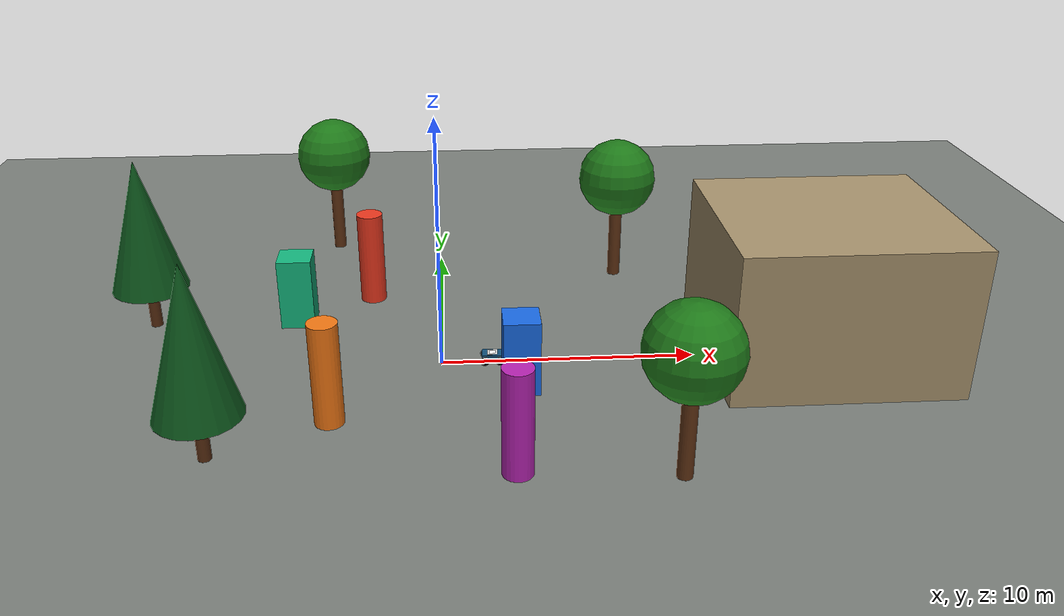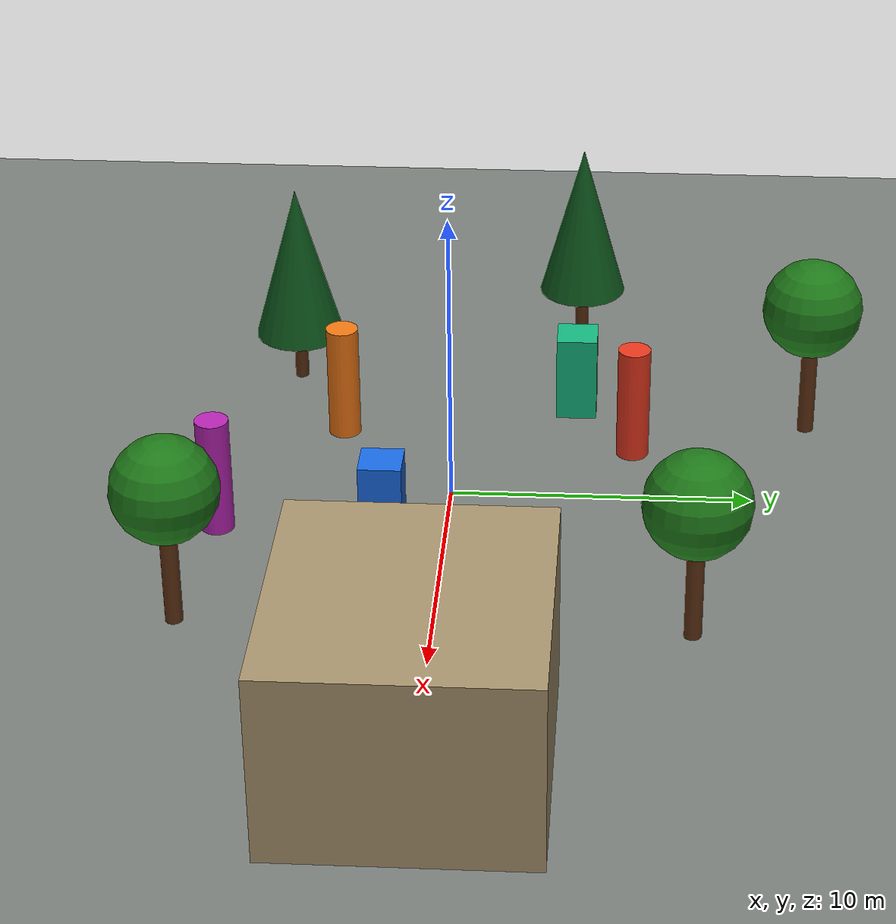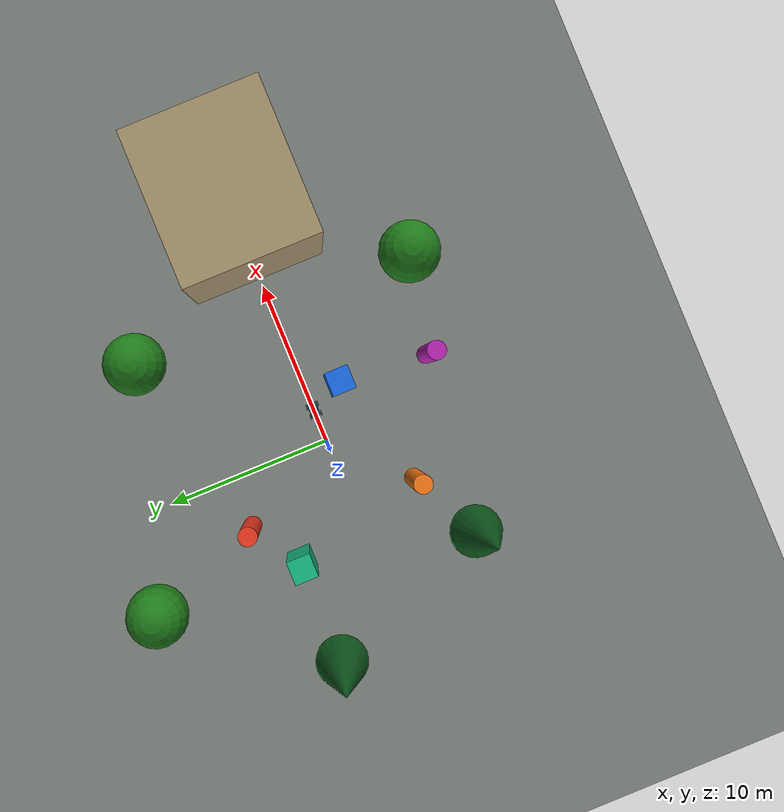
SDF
<sdf version="1.9">
 <world name="air_ground">
  <physics name="1ms" type="ignore">
   <max_step_size>0.001</max_step_size>
   <real_time_factor>1.0</real_time_factor>
  </physics>
  <plugin filename="gz-sim-physics-system" name="gz::sim::systems::Physics"/>
  <plugin filename="gz-sim-sensors-system" name="gz::sim::systems::Sensors">
   <render_engine>ogre2</render_engine>
  </plugin>
  <plugin filename="gz-sim-user-commands-system" name="gz::sim::systems::UserCommands"/>
  <plugin filename="gz-sim-scene-broadcaster-system" name="gz::sim::systems::SceneBroadcaster"/>
  <plugin filename="gz-sim-imu-system" name="gz::sim::systems::Imu"/>
  <plugin filename="gz-sim-navsat-system" name="gz::sim::systems::NavSat"/>
  <plugin filename="gz-sim-magnetometer-system" name="gz::sim::systems::Magnetometer"/>
  <plugin filename="gz-sim-air-pressure-system" name="gz::sim::systems::AirPressure"/>
  <scene><ambient>0.78 0.78 0.78 1</ambient><background>0.55 0.70 0.87 1</background></scene>
  <spherical_coordinates>
   <latitude_deg>22.1350000</latitude_deg>
   <longitude_deg>113.5447296</longitude_deg>
   <elevation>10</elevation>
   <heading_deg>0</heading_deg>
   <surface_model>EARTH_WGS84</surface_model>
  </spherical_coordinates>
  <light type="directional" name="sun">
   <pose>0 0 25 0 0 0</pose>
   <diffuse>0.9 0.9 0.9 1</diffuse>
   <direction>-0.5 0.2 -0.9</direction>
  </light>
  <model name="ground_plane">
   <static>true</static>
   <link name="link">
    <collision name="collision">
     <geometry><plane><normal>0 0 1</normal><size>70 70</size></plane></geometry>
    </collision>
    <visual name="visual">
     <geometry><plane><normal>0 0 1</normal><size>70 70</size></plane></geometry>
     <material><ambient>0.38 0.40 0.38 1</ambient><diffuse>0.48 0.50 0.48 1</diffuse></material>
    </visual>
   </link>
  </model>
  <include><uri>model://astra_oak_tree</uri><name>Oak_tree_1</name><pose>8 8 0 0 0 0</pose></include>
  <include><uri>model://astra_oak_tree</uri><name>Oak_tree_2</name><pose>8 -8 0 0 0 0</pose></include>
  <include><uri>model://astra_oak_tree</uri><name>Oak_tree_3</name><pose>-5 12 0 0 0 0</pose></include>
  <include><uri>model://astra_pine_tree</uri><name>Pine_Tree_1</name><pose>-8 -6 0 0 0 0</pose></include>
  <include><uri>model://astra_pine_tree</uri><name>Pine_Tree_2</name><pose>-12 4 0 0 0 0</pose></include>
  <model name="House_1">
   <pose>15 0 0 0 0 0</pose>
   <static>true</static>
   <link name="building">
    <collision name="collision">
     <pose>0 0 3 0 0 0</pose>
     <geometry><box><size>9 8 6</size></box></geometry>
    </collision>
    <visual name="visual">
     <pose>0 0 3 0 0 0</pose>
     <geometry><box><size>9 8 6</size></box></geometry>
     <material><diffuse>0.66 0.58 0.43 1</diffuse></material>
    </visual>
   </link>
  </model>
  <model name="obstacle_cylinder_1">
   <pose>-3 6 2 0 0 0</pose>
   <link name="obstacle">
    <velocity_decay><linear>0.35</linear><angular>0.35</angular></velocity_decay>
    <inertial><mass>8</mass><inertia><ixx>1000</ixx><iyy>1000</iyy><izz>1</izz></inertia></inertial>
    <collision name="collision">
     <geometry><cylinder><radius>0.55</radius><length>4</length></cylinder></geometry>
     <surface><friction><ode><mu>0.02</mu><mu2>0.02</mu2></ode></friction></surface>
    </collision>
    <visual name="visual">
     <geometry><cylinder><radius>0.55</radius><length>4</length></cylinder></geometry>
     <material><diffuse>0.92 0.22 0.12 1</diffuse></material>
    </visual>
   </link>
   <plugin filename="gz-sim-trajectory-follower-system" name="gz::sim::systems::TrajectoryFollower">
    <link_name>obstacle</link_name>
    <loop>true</loop>
    <force>3</force>
    <torque>10</torque>
    <zero_vel_on_bearing_reached>true</zero_vel_on_bearing_reached>
    <line><direction>0</direction><length>6</length></line>
   </plugin>
  </model>
  <model name="obstacle_cylinder_2">
   <pose>-4 -4 2 0 0 1.57079632679</pose>
   <link name="obstacle">
    <velocity_decay><linear>0.35</linear><angular>0.35</angular></velocity_decay>
    <inertial><mass>8</mass><inertia><ixx>1000</ixx><iyy>1000</iyy><izz>1</izz></inertia></inertial>
    <collision name="collision">
     <geometry><cylinder><radius>0.55</radius><length>4</length></cylinder></geometry>
     <surface><friction><ode><mu>0.02</mu><mu2>0.02</mu2></ode></friction></surface>
    </collision>
    <visual name="visual">
     <geometry><cylinder><radius>0.55</radius><length>4</length></cylinder></geometry>
     <material><diffuse>0.95 0.47 0.08 1</diffuse></material>
    </visual>
   </link>
   <plugin filename="gz-sim-trajectory-follower-system" name="gz::sim::systems::TrajectoryFollower">
    <link_name>obstacle</link_name>
    <loop>true</loop>
    <force>3</force>
    <torque>10</torque>
    <zero_vel_on_bearing_reached>true</zero_vel_on_bearing_reached>
    <line><direction>0</direction><length>8</length></line>
   </plugin>
  </model>
  <model name="obstacle_cylinder_3">
   <pose>2.525 -7.475 2 0 0 0.78539816339</pose>
   <link name="obstacle">
    <velocity_decay><linear>0.35</linear><angular>0.35</angular></velocity_decay>
    <inertial><mass>8</mass><inertia><ixx>1000</ixx><iyy>1000</iyy><izz>1</izz></inertia></inertial>
    <collision name="collision">
     <geometry><cylinder><radius>0.55</radius><length>4</length></cylinder></geometry>
     <surface><friction><ode><mu>0.02</mu><mu2>0.02</mu2></ode></friction></surface>
    </collision>
    <visual name="visual">
     <geometry><cylinder><radius>0.55</radius><length>4</length></cylinder></geometry>
     <material><diffuse>0.72 0.14 0.70 1</diffuse></material>
    </visual>
   </link>
   <plugin filename="gz-sim-trajectory-follower-system" name="gz::sim::systems::TrajectoryFollower">
    <link_name>obstacle</link_name>
    <loop>true</loop>
    <force>3</force>
    <torque>10</torque>
    <zero_vel_on_bearing_reached>true</zero_vel_on_bearing_reached>
    <line><direction>0</direction><length>7</length></line>
   </plugin>
  </model>
  <model name="obstacle_box_1">
   <pose>3 -2 1.5 0 0 0</pose>
   <link name="obstacle">
    <velocity_decay><linear>0.35</linear><angular>0.35</angular></velocity_decay>
    <inertial><mass>10</mass><inertia><ixx>1000</ixx><iyy>1000</iyy><izz>6</izz></inertia></inertial>
    <collision name="collision">
     <geometry><box><size>1.4 1.4 3</size></box></geometry>
     <surface><friction><ode><mu>0.02</mu><mu2>0.02</mu2></ode></friction></surface>
    </collision>
    <visual name="visual">
     <geometry><box><size>1.4 1.4 3</size></box></geometry>
     <material><diffuse>0.10 0.42 0.90 1</diffuse></material>
    </visual>
   </link>
   <plugin filename="gz-sim-trajectory-follower-system" name="gz::sim::systems::TrajectoryFollower">
    <link_name>obstacle</link_name>
    <loop>true</loop>
    <force>3</force>
    <torque>10</torque>
    <zero_vel_on_bearing_reached>true</zero_vel_on_bearing_reached>
    <circle><radius>3</radius></circle>
   </plugin>
  </model>
  <model name="obstacle_box_2">
   <pose>-6 4 1.5 0 0 0</pose>
   <link name="obstacle">
    <velocity_decay><linear>0.35</linear><angular>0.35</angular></velocity_decay>
    <inertial><mass>10</mass><inertia><ixx>1000</ixx><iyy>1000</iyy><izz>6</izz></inertia></inertial>
    <collision name="collision">
     <geometry><box><size>1.4 1.4 3</size></box></geometry>
     <surface><friction><ode><mu>0.02</mu><mu2>0.02</mu2></ode></friction></surface>
    </collision>
    <visual name="visual">
     <geometry><box><size>1.4 1.4 3</size></box></geometry>
     <material><diffuse>0.08 0.72 0.50 1</diffuse></material>
    </visual>
   </link>
   <plugin filename="gz-sim-trajectory-follower-system" name="gz::sim::systems::TrajectoryFollower">
    <link_name>obstacle</link_name>
    <loop>true</loop>
    <force>3</force>
    <torque>10</torque>
    <zero_vel_on_bearing_reached>true</zero_vel_on_bearing_reached>
    <waypoints>
     <waypoint>-6 4</waypoint>
     <waypoint>-10 2</waypoint>
     <waypoint>-6 0</waypoint>
     <waypoint>-2 2</waypoint>
     <waypoint>-6 4</waypoint>
    </waypoints>
   </plugin>
  </model>
  <include>
   <uri>model://ground_vehicle</uri>
   <name>ground_vehicle</name>
   <pose>2.0 0 0 0 0 3.14159265359</pose>
  </include>
 </world>
</sdf>

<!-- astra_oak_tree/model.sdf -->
<sdf version="1.9">
  <model name="astra_oak_tree">
    <static>true</static>
    <link name="tree">
      <collision name="trunk_collision">
        <pose>0 0 2 0 0 0</pose>
        <geometry><cylinder><radius>0.28</radius><length>4</length></cylinder></geometry>
      </collision>
      <visual name="trunk_visual">
        <pose>0 0 2 0 0 0</pose>
        <geometry><cylinder><radius>0.28</radius><length>4</length></cylinder></geometry>
        <material><ambient>0.28 0.13 0.05 1</ambient><diffuse>0.38 0.20 0.08 1</diffuse></material>
      </visual>
      <collision name="crown_collision">
        <pose>0 0 4.7 0 0 0</pose>
        <geometry><sphere><radius>1.7</radius></sphere></geometry>
      </collision>
      <visual name="crown_visual">
        <pose>0 0 4.7 0 0 0</pose>
        <geometry><sphere><radius>1.7</radius></sphere></geometry>
        <material><ambient>0.08 0.30 0.07 1</ambient><diffuse>0.12 0.48 0.10 1</diffuse></material>
      </visual>
    </link>
  </model>
</sdf>

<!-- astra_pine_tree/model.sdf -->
<sdf version="1.9">
  <model name="astra_pine_tree">
    <static>true</static>
    <link name="tree">
      <collision name="trunk_collision">
        <pose>0 0 2.5 0 0 0</pose>
        <geometry><cylinder><radius>0.24</radius><length>5</length></cylinder></geometry>
      </collision>
      <visual name="trunk_visual">
        <pose>0 0 2.5 0 0 0</pose>
        <geometry><cylinder><radius>0.24</radius><length>5</length></cylinder></geometry>
        <material><ambient>0.26 0.13 0.05 1</ambient><diffuse>0.35 0.18 0.07 1</diffuse></material>
      </visual>
      <collision name="crown_collision">
        <pose>0 0 4.5 0 0 0</pose>
        <geometry><cone><radius>1.55</radius><length>5.5</length></cone></geometry>
      </collision>
      <visual name="crown_visual">
        <pose>0 0 4.5 0 0 0</pose>
        <geometry><cone><radius>1.55</radius><length>5.5</length></cone></geometry>
        <material><ambient>0.04 0.20 0.08 1</ambient><diffuse>0.05 0.34 0.11 1</diffuse></material>
      </visual>
    </link>
  </model>
</sdf>

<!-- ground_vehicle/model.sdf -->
<sdf version="1.9">
  <model name="ground_vehicle">
    <pose>0 0 0 0 0 0</pose>

    <link name="base_link">
      <!-- Keep the body collision 40 mm above the ground so the wheels, not
           the chassis belly, carry the vehicle and generate traction. -->
      <pose>0 0 0.30 0 0 0</pose>
      <inertial>
        <mass>18.0</mass>
        <inertia>
          <ixx>0.65</ixx><iyy>1.10</iyy><izz>1.35</izz>
        </inertia>
      </inertial>
      <collision name="body_collision">
        <geometry><box><size>0.82 0.54 0.18</size></box></geometry>
      </collision>
      <visual name="body_visual">
        <geometry><box><size>0.82 0.54 0.18</size></box></geometry>
        <material>
          <ambient>0.05 0.18 0.28 1</ambient>
          <diffuse>0.08 0.32 0.48 1</diffuse>
        </material>
      </visual>
      <visual name="landing_pad">
        <pose>0 0 0.105 0 0 0</pose>
        <geometry><box><size>0.40 0.40 0.018</size></box></geometry>
        <material>
          <ambient>0.75 0.75 0.75 1</ambient>
          <diffuse>0.85 0.85 0.85 1</diffuse>
        </material>
      </visual>
      <!-- Physical target shown in the supplied reference photo:
           tag36h11 ID 0, 200 mm black edge plus a 25 mm white quiet
           border on every side, for a 250 x 250 mm printed board. -->
      <visual name="apriltag_id0">
        <pose>0 0 0.115 0 0 0</pose>
        <geometry><plane><normal>0 0 1</normal><size>0.25 0.25</size></plane></geometry>
        <material>
          <ambient>1 1 1 1</ambient>
          <diffuse>1 1 1 1</diffuse>
          <specular>0 0 0 1</specular>
          <pbr>
            <metal>
              <albedo_map>model://ground_vehicle/materials/textures/tag36h11_id0.png</albedo_map>
              <metalness>0.0</metalness>
              <roughness>1.0</roughness>
            </metal>
          </pbr>
        </material>
      </visual>
    </link>

    <link name="left_front_wheel">
      <pose>0.30 0.33 0.17 1.57079632679 0 0</pose>
      <inertial><mass>1.0</mass><inertia><ixx>0.015</ixx><iyy>0.015</iyy><izz>0.025</izz></inertia></inertial>
      <collision name="collision"><geometry><cylinder><radius>0.17</radius><length>0.08</length></cylinder></geometry><surface><friction><ode><mu>1.2</mu><mu2>1.2</mu2></ode></friction></surface></collision>
      <visual name="visual"><geometry><cylinder><radius>0.17</radius><length>0.08</length></cylinder></geometry><material><ambient>0.03 0.03 0.03 1</ambient><diffuse>0.06 0.06 0.06 1</diffuse></material></visual>
    </link>
    <link name="left_rear_wheel">
      <pose>-0.30 0.33 0.17 1.57079632679 0 0</pose>
      <inertial><mass>1.0</mass><inertia><ixx>0.015</ixx><iyy>0.015</iyy><izz>0.025</izz></inertia></inertial>
      <collision name="collision"><geometry><cylinder><radius>0.17</radius><length>0.08</length></cylinder></geometry><surface><friction><ode><mu>1.2</mu><mu2>1.2</mu2></ode></friction></surface></collision>
      <visual name="visual"><geometry><cylinder><radius>0.17</radius><length>0.08</length></cylinder></geometry><material><ambient>0.03 0.03 0.03 1</ambient><diffuse>0.06 0.06 0.06 1</diffuse></material></visual>
    </link>
    <link name="right_front_wheel">
      <pose>0.30 -0.33 0.17 1.57079632679 0 0</pose>
      <inertial><mass>1.0</mass><inertia><ixx>0.015</ixx><iyy>0.015</iyy><izz>0.025</izz></inertia></inertial>
      <collision name="collision"><geometry><cylinder><radius>0.17</radius><length>0.08</length></cylinder></geometry><surface><friction><ode><mu>1.2</mu><mu2>1.2</mu2></ode></friction></surface></collision>
      <visual name="visual"><geometry><cylinder><radius>0.17</radius><length>0.08</length></cylinder></geometry><material><ambient>0.03 0.03 0.03 1</ambient><diffuse>0.06 0.06 0.06 1</diffuse></material></visual>
    </link>
    <link name="right_rear_wheel">
      <pose>-0.30 -0.33 0.17 1.57079632679 0 0</pose>
      <inertial><mass>1.0</mass><inertia><ixx>0.015</ixx><iyy>0.015</iyy><izz>0.025</izz></inertia></inertial>
      <collision name="collision"><geometry><cylinder><radius>0.17</radius><length>0.08</length></cylinder></geometry><surface><friction><ode><mu>1.2</mu><mu2>1.2</mu2></ode></friction></surface></collision>
      <visual name="visual"><geometry><cylinder><radius>0.17</radius><length>0.08</length></cylinder></geometry><material><ambient>0.03 0.03 0.03 1</ambient><diffuse>0.06 0.06 0.06 1</diffuse></material></visual>
    </link>

    <!-- Joint axes are expressed in each rotated wheel frame.  Local Z is the
         axle direction after the 90-degree wheel-link roll. -->
    <joint name="left_front_joint" type="revolute">
      <parent>base_link</parent><child>left_front_wheel</child>
      <axis><xyz>0 0 1</xyz><limit><lower>-1.0e16</lower><upper>1.0e16</upper></limit></axis>
    </joint>
    <joint name="left_rear_joint" type="revolute">
      <parent>base_link</parent><child>left_rear_wheel</child>
      <axis><xyz>0 0 1</xyz><limit><lower>-1.0e16</lower><upper>1.0e16</upper></limit></axis>
    </joint>
    <joint name="right_front_joint" type="revolute">
      <parent>base_link</parent><child>right_front_wheel</child>
      <axis><xyz>0 0 1</xyz><limit><lower>-1.0e16</lower><upper>1.0e16</upper></limit></axis>
    </joint>
    <joint name="right_rear_joint" type="revolute">
      <parent>base_link</parent><child>right_rear_wheel</child>
      <axis><xyz>0 0 1</xyz><limit><lower>-1.0e16</lower><upper>1.0e16</upper></limit></axis>
    </joint>

    <plugin filename="gz-sim-diff-drive-system" name="gz::sim::systems::DiffDrive">
      <left_joint>left_front_joint</left_joint>
      <left_joint>left_rear_joint</left_joint>
      <right_joint>right_front_joint</right_joint>
      <right_joint>right_rear_joint</right_joint>
      <wheel_separation>0.66</wheel_separation>
      <wheel_radius>0.17</wheel_radius>
      <topic>/model/ground_vehicle/cmd_vel</topic>
      <odom_topic>/model/ground_vehicle/odometry</odom_topic>
      <tf_topic>/model/ground_vehicle/tf</tf_topic>
      <frame_id>odom</frame_id>
      <child_frame_id>ugv_base_link</child_frame_id>
      <odom_publish_frequency>30</odom_publish_frequency>
      <max_linear_acceleration>1.0</max_linear_acceleration>
      <max_angular_acceleration>1.5</max_angular_acceleration>
    </plugin>
  </model>
</sdf>
